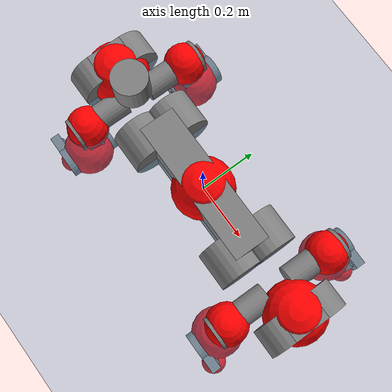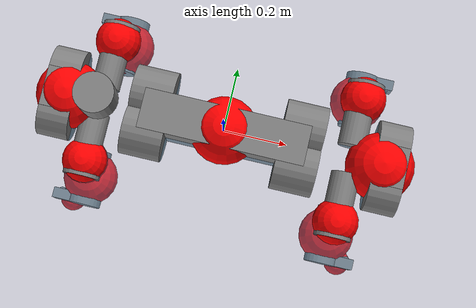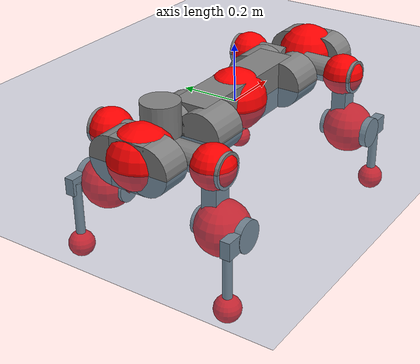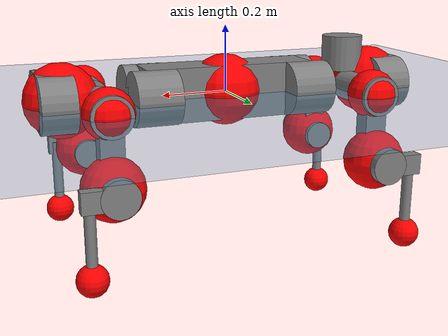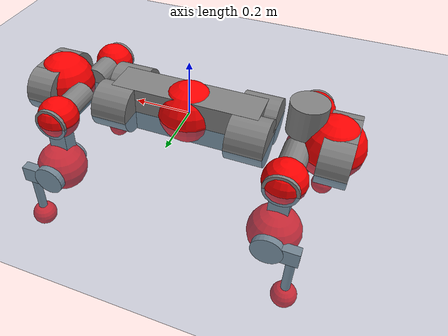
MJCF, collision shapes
<mujoco model="anymal_c">
  <compiler angle="radian" assetdir="assets" balanceinertia="true" inertiafromgeom="false"/>

  <option timestep="0.005" density="1.2" viscosity="2e-05"/>

  <size nkey="1"/>

  <visual>
    <quality shadowsize="8192"/>
    <map shadowclip="0.5"/>
  </visual>

  <default>
    <default class="/">
      <material specular="0" shininess="0.25"/>
      <geom contype="0" conaffinity="0" group="1" solref="-1000 -80"/>
      <site size="0.01 0.005 0.005" group="5"/>
      <general forcelimited="true" forcerange="-80 80" biastype="affine" gainprm="80" biasprm="0 -80 -2"/>
      <default class="anymal_c">
        <joint armature="0.01" damping="0.01" frictionloss="0.1"/>
        <default class="visual">
          <geom type="mesh" group="2"/>
          <default class="visual_zflip"/>
        </default>
        <default class="collision">
          <geom type="cylinder" group="3"/>
          <default class="foot">
            <geom size="0.03 0 0" type="sphere" condim="6" priority="1" friction="0.8 0.02 0.01" solimp="0.015 1 0.03"/>
          </default>
        </default>
      </default>
      <default class="reward_collision_sphere">
        <geom group="5" rgba="1 0 0 1"/>
      </default>
    </default>
  </default>

  <asset>
    <texture type="skybox" colorspace="auto" name="//unnamed_texture_0" builtin="gradient" rgb1="0.95 0.95 0.95" rgb2="0.95 0.95 0.95" width="100" height="600"/>
    <texture type="2d" colorspace="auto" name="texplane" builtin="checker" rgb1="0.345 0.575 0.748" rgb2="0.345 0.575 0.748" markrgb="1 1 1" width="512" height="512"/>
    <texture type="2d" colorspace="linear" name="base" file="base.png"/>
    <texture type="2d" colorspace="linear" name="top_shell" file="top_shell.png"/>
    <texture type="2d" colorspace="linear" name="bottom_shell" file="bottom_shell.png"/>
    <texture type="2d" colorspace="linear" name="remote" file="remote.png"/>
    <texture type="2d" colorspace="linear" name="hatch" file="hatch.png"/>
    <texture type="2d" colorspace="linear" name="handle" file="handle.png"/>
    <texture type="2d" colorspace="linear" name="face" file="face.png"/>
    <texture type="2d" colorspace="linear" name="battery" file="battery.png"/>
    <texture type="2d" colorspace="linear" name="lidar_cage" file="lidar_cage.png"/>
    <texture type="2d" colorspace="linear" name="depth_camera" file="depth_camera.png"/>
    <texture type="2d" colorspace="linear" name="wide_angle_camera" file="wide_angle_camera.png"/>
    <texture type="2d" colorspace="linear" name="lidar" file="lidar.png"/>
    <texture type="2d" colorspace="linear" name="drive" file="drive.png"/>
    <texture type="2d" colorspace="linear" name="hip_l" file="hip_l.png"/>
    <texture type="2d" colorspace="linear" name="shank_l" file="shank_l.png"/>
    <texture type="2d" colorspace="linear" name="foot" file="foot.png"/>
    <texture type="2d" colorspace="linear" name="thigh" file="thigh.png"/>
    <texture type="2d" colorspace="linear" name="shank_r" file="shank_r.png"/>
    <texture type="2d" colorspace="linear" name="hip_r" file="hip_r.png"/>
    <material name="MatPlane" class="/" texture="texplane" texuniform="true" texrepeat="2 2" specular="0.9" shininess="0.5"/>
    <material name="black_plastic" class="/" rgba="0.007 0.007 0.007 1"/>
    <material name="green" class="/" rgba="0.052 0.178 0.033 1"/>
    <material name="red" class="/" rgba="0.178 0.006 0.005 1"/>
    <material name="yellow" class="/" rgba="0.178 0.119 0.006 1"/>
    <material name="lwl" class="/" rgba="0.8 0.8 0.8 1"/>
    <material name="base" class="/" texture="base"/>
    <material name="top_shell" class="/" texture="top_shell"/>
    <material name="bottom_shell" class="/" texture="bottom_shell"/>
    <material name="hip_l" class="/" texture="hip_l"/>
    <material name="thigh" class="/" texture="thigh"/>
    <material name="shank_l" class="/" texture="shank_l"/>
    <material name="foot" class="/" texture="foot"/>
    <material name="hip_r" class="/" texture="hip_r"/>
    <material name="shank" class="/" texture="shank_r"/>
    <material name="hatch" class="/" texture="hatch"/>
    <material name="remote" class="/" texture="remote"/>
    <material name="handle" class="/" texture="handle"/>
    <material name="face" class="/" texture="face"/>
    <material name="depth_camera" class="/" texture="depth_camera"/>
    <material name="wide_angle_camera" class="/" texture="wide_angle_camera"/>
    <material name="battery" class="/" texture="battery"/>
    <material name="lidar_cage" class="/" texture="lidar_cage"/>
    <material name="lidar" class="/" texture="lidar"/>
    <material name="drive" class="/" texture="drive"/>
    <mesh name="base_0" class="/" file="base_0.obj"/>
    <mesh name="base_1" class="/" file="base_1.obj"/>
    <mesh name="base_2" class="/" file="base_2.obj"/>
    <mesh name="base_3" class="/" file="base_3.obj"/>
    <mesh name="base_4" class="/" file="base_4.obj"/>
    <mesh name="base_5" class="/" file="base_5.obj"/>
    <mesh name="top_shell" class="/" file="top_shell.obj"/>
    <mesh name="bottom_shell" class="/" file="bottom_shell.obj"/>
    <mesh name="remote" class="/" file="remote.obj"/>
    <mesh name="handle" class="/" file="handle.obj"/>
    <mesh name="face" class="/" file="face.obj"/>
    <mesh name="wide_angle_camera" class="/" file="wide_angle_camera.obj"/>
    <mesh name="depth_camera" class="/" file="depth_camera.obj"/>
    <mesh name="battery" class="/" file="battery.obj"/>
    <mesh name="lidar_cage" class="/" file="lidar_cage.obj"/>
    <mesh name="lidar" class="/" file="lidar.obj"/>
    <mesh name="drive" class="/" file="drive.obj"/>
    <mesh name="hip_l" class="/" file="hip_l.obj"/>
    <mesh name="thigh" class="/" file="thigh.obj"/>
    <mesh name="shank_l" class="/" file="shank_l.obj"/>
    <mesh name="foot" class="/" file="foot.obj"/>
    <mesh name="hip_r" class="/" file="hip_r.obj"/>
    <mesh name="hatch" class="/" file="hatch.obj"/>
    <mesh name="shank_r" class="/" file="shank_r.obj"/>
  </asset>

  <worldbody>
    <geom name="floor" class="/" size="100 100 0.125" type="plane" group="0" material="MatPlane"/>
    <light name="toplight_shadow" class="/" pos="0 0 5" dir="0.0990148 0.0990148 -0.990148" type="directional" ambient="0.04 0.04 0.04" diffuse="0.55 0.55 0.55" specular="0.12 0.12 0.12"/>
    <light name="toplight_fill" class="/" pos="0 0 5" dir="0.0990148 0.0990148 -0.990148" type="directional" castshadow="false" ambient="0.04 0.04 0.04" diffuse="0.3 0.3 0.3" specular="0.08 0.08 0.08"/>
    <body name="trunk" childclass="anymal_c" pos="0.00226285 -0.000153597 0.00712633" quat="0.999995 0.00176412 -0.000694948 -0.00242031">
      <inertial pos="0.00414332 -0.00449094 0.0294807" quat="0.495182 0.481966 0.499883 0.522131" mass="12.9696" diaginertia="0.891374 0.31204 0.033091"/>
      <joint name="//unnamed_joint_0" type="free" armature="0" damping="0" frictionloss="0"/>
      <geom name="//unnamed_geom_1" class="visual" material="green" mesh="base_0"/>
      <geom name="//unnamed_geom_2" class="visual" material="yellow" mesh="base_1"/>
      <geom name="//unnamed_geom_3" class="visual" material="red" mesh="base_2"/>
      <geom name="//unnamed_geom_4" class="visual" material="black_plastic" mesh="base_3"/>
      <geom name="//unnamed_geom_5" class="visual" material="lwl" mesh="base_4"/>
      <geom name="//unnamed_geom_6" class="visual" material="base" mesh="base_5"/>
      <geom name="trunk_1" class="collision" size="0.259896 0.0627335 0.0806574" type="box"/>
      <geom name="trunk_2" class="collision" size="0.0806574 0.064974" pos="0.238701 0.0625294 0" quat="0.707107 0 0.707107 0"/>
      <geom name="trunk_3" class="collision" size="0.0806574 0.064974" pos="-0.238701 0.0625294 0" quat="0.707107 0 0.707107 0"/>
      <geom name="trunk_4" class="collision" size="0.0806574 0.064974" pos="0.238701 -0.0625294 0" quat="0.707107 0 0.707107 0"/>
      <geom name="trunk_5" class="collision" size="0.0806574 0.064974" pos="-0.238701 -0.0625294 0" quat="0.707107 0 0.707107 0"/>
      <geom name="//unnamed_geom_12" class="visual" material="top_shell" mesh="top_shell"/>
      <geom name="//unnamed_geom_13" class="visual" material="bottom_shell" mesh="bottom_shell"/>
      <geom name="//unnamed_geom_14" class="visual" material="remote" mesh="remote"/>
      <geom name="//unnamed_geom_15" class="visual" material="handle" mesh="handle"/>
      <geom name="//unnamed_geom_16" class="visual" pos="0.454904 0 0" quat="1 0 0 0" material="face" mesh="face"/>
      <geom name="trunk_6" class="collision" size="0.0492906 0.0627335 0.0806574" pos="0.515266 0 0" type="box"/>
      <geom name="//unnamed_geom_18" class="collision" size="0.0806574 0.0492906" pos="0.515266 0.0625294 0" quat="0.707107 0 0.707107 0"/>
      <geom name="//unnamed_geom_19" class="collision" size="0.0806574 0.0492906" pos="0.515266 -0.0625294 0" quat="0.707107 0 0.707107 0"/>
      <geom name="//unnamed_geom_20" class="visual" pos="0.506634 0 -0.0173392" quat="0.965926 0 0.258819 0" material="depth_camera" mesh="depth_camera"/>
      <geom name="//unnamed_geom_21" class="visual" pos="0.563006 0 0.0104465" material="wide_angle_camera" mesh="wide_angle_camera"/>
      <geom name="//unnamed_geom_22" class="visual_zflip" pos="-0.454904 0 0" quat="0 0 0 1" material="face" mesh="face"/>
      <geom name="trunk_7" class="collision" size="0.0492906 0.0627335 0.0806574" pos="-0.515266 0 0" quat="0 0 0 1" type="box"/>
      <geom name="//unnamed_geom_24" class="collision" size="0.0806574 0.0492906" pos="-0.515266 -0.0625294 0" quat="0 -0.707107 0 0.707107"/>
      <geom name="//unnamed_geom_25" class="collision" size="0.0806574 0.0492906" pos="-0.515266 0.0625294 0" quat="0 -0.707107 0 0.707107"/>
      <geom name="//unnamed_geom_26" class="visual" pos="-0.506634 0 -0.0173392" quat="0 -0.258819 0 0.965926" material="depth_camera" mesh="depth_camera"/>
      <geom name="//unnamed_geom_27" class="visual_zflip" pos="-0.563006 0 0.0104465" quat="0 0 0 1" material="wide_angle_camera" mesh="wide_angle_camera"/>
      <geom name="//unnamed_geom_28" class="visual" material="battery" mesh="battery"/>
      <geom name="//unnamed_geom_29" class="visual" pos="0 0.0656038 0.0233092" quat="0.683013 -0.183013 0.183013 0.683013" material="depth_camera" mesh="depth_camera"/>
      <geom name="//unnamed_geom_30" class="visual" pos="0 -0.0656038 0.0233092" quat="0.683013 0.183013 0.183013 -0.683013" material="depth_camera" mesh="depth_camera"/>
      <geom name="//unnamed_geom_31" class="visual" pos="-0.399482 0 0.0512902" quat="1 0 0 0" material="lidar_cage" mesh="lidar_cage"/>
      <geom name="trunk_8" class="collision" size="0.0627335 0.0537716" pos="-0.399482 0 0.0931598"/>
      <geom name="//unnamed_geom_33" class="visual" pos="-0.399482 -8.0225e-05 0.0992308" quat="0.707107 0 0 -0.707107" material="lidar" mesh="lidar"/>
      <geom name="//unnamed_geom_34" class="visual" pos="0.329133 0.0928313 3.37155e-09" quat="0.258819 0.965926 0 0" material="drive" mesh="drive"/>
      <geom name="//unnamed_geom_35" class="visual" pos="0.329133 -0.0928313 -3.37155e-09" quat="0.258819 -0.965926 0 0" material="drive" mesh="drive"/>
      <geom name="//unnamed_geom_36" class="visual" pos="-0.329133 0.0928313 -3.37155e-09" quat="0 0 0.965926 -0.258819" material="drive" mesh="drive"/>
      <geom name="//unnamed_geom_37" class="visual" pos="-0.329133 -0.0928313 3.37155e-09" quat="0 0 -0.965926 -0.258819" material="drive" mesh="drive"/>
      <geom name="//unnamed_geom_38" class="visual" pos="0.127307 0 0.0509413" quat="1 0 0 0" material="hatch" mesh="hatch"/>
      <geom name="//unnamed_geom_39" class="reward_collision_sphere" size="0.107543"/>
      <geom name="//unnamed_geom_40" class="reward_collision_sphere" size="0.107543" pos="0.493865 0 0"/>
      <geom name="//unnamed_geom_41" class="reward_collision_sphere" size="0.107543" pos="-0.493865 0 0"/>
      <site name="imu" pos="0.283434 -0.000546157 0.0516568" size="0.00896193"/>
      <camera name="track" pos="0 -1.78655 0" quat="0.707107 0.707107 0 0" mode="trackcom"/>
      <camera name="ego_camera" pos="0.493865 0 -0.027913" quat="-0.5 -0.5 0.5 0.5"/>
      <body name="LF_HIP" pos="0.330753 0.094313 -0.00114722" quat="0.25888 0.965909 -0.000130292 -0.000472829">
        <inertial pos="0.0678274 -0.0132087 0.000986005" quat="-0.123615 0.733147 -0.124318 0.657084" mass="2.05375" diaginertia="0.0091026 0.00280024 0.000552779"/>
        <joint name="LF_HAA" pos="0 0 0" axis="0.999678 0.0193437 -0.0164042" stiffness="0.0132926" range="-0.728731 0.468016" armature="0.00906888" damping="0.0235795" frictionloss="0.0849921"/>
        <geom name="//unnamed_geom_42" class="visual" pos="0 0.000198333 -3.2576e-05" quat="0.258819 -0.965926 0 0" material="hip_l" mesh="hip_l"/>
        <geom name="//unnamed_geom_43" class="visual" pos="0.0657389 -0.0768986 -0.0429518" quat="0.183013 -0.683013 0.683013 0.183013" material="drive" mesh="drive"/>
        <geom name="//unnamed_geom_44" class="collision" size="0.0448097 0.0627335" pos="0.0657389 -0.0106834 -0.00481849" quat="-0.353553 -0.612372 0.612372 -0.353553"/>
        <body name="LF_THIGH" pos="0.069993 -0.0666084 -0.0346328" quat="0.182953 -0.683351 0.682719 0.182902">
          <inertial pos="0.033869 0.000583673 -0.17309" quat="0.993289 -0.00184953 -0.0829849 0.0805438" mass="2.40435" diaginertia="0.0525045 0.0180905 0.000775416"/>
          <joint name="LF_HFE" pos="0 0 0" axis="0.99999 0.00205214 0.0040485" stiffness="0.00450341" range="-3.11601 3.13395" armature="0.0102411" damping="0" frictionloss="0.0901553"/>
          <geom name="//unnamed_geom_45" class="visual" pos="0.00406279 6.40201e-06 0" quat="0.707107 0 0 -0.707107" material="thigh" mesh="thigh"/>
          <geom name="//unnamed_geom_46" class="collision" size="0.0582526 0.0358477" pos="0.0438991 0 0" quat="0.5 0.5 -0.5 -0.5"/>
          <geom name="//unnamed_geom_47" class="collision" size="0.0336073 0.0268858 0.126645" pos="0.0329243 0 -0.0986126" quat="0.707107 0 0 -0.707107" type="box"/>
          <geom name="//unnamed_geom_48" class="visual" pos="0.110077 0 -0.19888" quat="1 0 0 0" material="drive" mesh="drive"/>
          <geom name="//unnamed_geom_49" class="collision" size="0.0448097 0.0627335" pos="0.0332536 0 -0.19888" quat="0.707107 0 0.707107 0"/>
          <geom name="//unnamed_geom_50" class="reward_collision_sphere" size="0.0716955" pos="0.0274369 0 0"/>
          <body name="LF_SHANK" pos="0.112278 -0.00221286 -0.197473" quat="1 1.06514e-06 9.0382e-06 -1.81031e-05">
            <inertial pos="0.0142474 -0.0482401 -0.056946" quat="0.993377 -0.111659 -0.00826318 -0.0258036" mass="0.416899" diaginertia="0.0170621 0.00530134 0.000182032"/>
            <joint name="LF_KFE" pos="0 0 0" axis="0.999969 -0.000429542 0.00790234" range="-2.98006 3.10806" armature="0.00846541" damping="0.00158074" frictionloss="0.0559725"/>
            <geom name="//unnamed_geom_51" class="visual" pos="0.00132479 0.00706383 0" quat="0.707107 0 0 -0.707107" material="shank_l" mesh="shank_l"/>
            <geom name="LF_kfe_act" class="collision" size="0.0537716 0.0179239" pos="0.0219495 0 0" quat="0.5 0.5 -0.5 -0.5"/>
            <geom name="//unnamed_geom_53" class="collision" size="0.0515302 0.0302465 0.0170277" pos="0.0219495 -0.0513625 0" quat="0.5 0.5 -0.5 -0.5" type="box"/>
            <geom name="//unnamed_geom_54" class="visual" pos="0.0143218 -0.0762873 -0.235844" quat="0.382683 0 0 -0.92388" material="foot" mesh="foot"/>
            <geom name="LF_calf" class="collision" size="0.0156834 0.126589" pos="0.0143221 -0.0785637 -0.117922" quat="0.707107 0 0 -0.707107"/>
            <geom name="LF_foot" class="foot" size="0.0318995" pos="0.0143221 -0.0785637 -0.220143" quat="0.707107 0 0 -0.707107"/>
            <geom name="//unnamed_geom_57" class="reward_collision_sphere" size="0.0896193" pos="-0.0548739 0 0"/>
            <geom name="//unnamed_geom_58" class="reward_collision_sphere" size="0.0448097" pos="0.0143221 -0.0785637 -0.220143"/>
            <site name="LF_foot" class="foot" pos="0.0143221 -0.0785637 -0.220143" quat="0.707107 0 0 -0.707107" size="0.00896193"/>
          </body>
        </body>
      </body>
      <body name="RF_HIP" pos="0.330623 -0.0950999 0.000894528" quat="0.261318 -0.965249 0.000152024 0.002816">
        <inertial pos="0.0619334 0.0144919 -0.00504975" quat="0.140672 0.704492 0.124642 0.684373" mass="1.79158" diaginertia="0.00943977 0.00272463 0.000551747"/>
        <joint name="RF_HAA" pos="0 0 0" axis="0.999978 0.000614594 -0.00666562" stiffness="0.0201631" range="-0.350311 0.742884" armature="0.00963982" damping="0.0187766" frictionloss="0.0793791"/>
        <geom name="//unnamed_geom_59" class="visual" pos="0 -0.000198331 -3.25759e-05" quat="0.258819 0.965926 0 0" material="hip_r" mesh="hip_r"/>
        <geom name="//unnamed_geom_60" class="visual" pos="0.0657389 0.0768986 -0.0429518" quat="0.183013 0.683013 0.683013 -0.183013" material="drive" mesh="drive"/>
        <geom name="//unnamed_geom_61" class="collision" size="0.0448097 0.0627335" pos="0.0657389 0.0106834 -0.00481849" quat="-0.353553 0.612372 0.612372 0.353553"/>
        <body name="RF_THIGH" pos="0.0670686 0.0664577 -0.0316639" quat="0.183091 0.682832 0.683121 -0.183203">
          <inertial pos="0.0343826 2.31796e-05 -0.172117" quat="0.992694 -0.0109067 -0.0838021 0.0861213" mass="2.12548" diaginertia="0.0494769 0.0180548 0.000697248"/>
          <joint name="RF_HFE" pos="0 0 0" axis="1 0.000896224 -1.87643e-05" range="-3.15366 3.16906" armature="0.00903133" damping="0.0473084" frictionloss="0.107522"/>
          <geom name="//unnamed_geom_62" class="visual" pos="0.00406279 6.40201e-06 0" quat="0.707107 0 0 -0.707107" material="thigh" mesh="thigh"/>
          <geom name="//unnamed_geom_63" class="collision" size="0.0582526 0.0358477" pos="0.0438991 0 0" quat="0.5 0.5 0.5 0.5"/>
          <geom name="//unnamed_geom_64" class="collision" size="0.0336073 0.0268858 0.126645" pos="0.0329243 0 -0.0986126" quat="0.707107 0 0 0.707107" type="box"/>
          <geom name="//unnamed_geom_65" class="visual" pos="0.110077 0 -0.19888" quat="1 0 0 0" material="drive" mesh="drive"/>
          <geom name="//unnamed_geom_66" class="collision" size="0.0448097 0.0627335" pos="0.0332536 0 -0.19888" quat="0.707107 0 0.707107 0"/>
          <geom name="//unnamed_geom_67" class="reward_collision_sphere" size="0.0716955" pos="0.0274369 0 0"/>
          <body name="RF_SHANK" pos="0.116691 0.000626925 -0.197051" quat="1 0.000627914 -0.000692555 0.000278347">
            <inertial pos="0.00460339 0.0605661 -0.0602383" quat="0.992247 0.12251 -0.0190279 -0.00862295" mass="0.442399" diaginertia="0.0169711 0.00527655 0.000204297"/>
            <joint name="RF_KFE" pos="0 0 0" axis="0.999976 -0.00357465 0.00598446" range="-3.126 3.09238" armature="0.00924463" damping="0.021053" frictionloss="0.0925024"/>
            <geom name="//unnamed_geom_68" class="visual" pos="0.00132478 -0.00706382 0" quat="0.707107 0 0 0.707107" material="shank" mesh="shank_r"/>
            <geom name="RF_kfe_act" class="collision" size="0.0537716 0.0179239" pos="0.0219495 0 0" quat="0.5 0.5 0.5 0.5"/>
            <geom name="//unnamed_geom_70" class="collision" size="0.0515302 0.0302465 0.0170277" pos="0.0219495 0.0513625 0" quat="0.5 0.5 0.5 0.5" type="box"/>
            <geom name="//unnamed_geom_71" class="visual" pos="0.0143224 0.0762873 -0.235844" quat="0.382683 0 0 0.92388" material="foot" mesh="foot"/>
            <geom name="RF_calf" class="collision" size="0.0156834 0.126589" pos="0.0143221 0.0785637 -0.117922" quat="0.707107 0 0 0.707107"/>
            <geom name="RF_foot" class="foot" size="0.0325236" pos="0.0143221 0.0785637 -0.220143" quat="0.707107 0 0 0.707107"/>
            <geom name="//unnamed_geom_74" class="reward_collision_sphere" size="0.0896193" pos="-0.0548739 0 0"/>
            <geom name="//unnamed_geom_75" class="reward_collision_sphere" size="0.0448097" pos="0.0143221 0.0785637 -0.220143"/>
            <site name="RF_foot" class="foot" pos="0.0143221 0.0785637 -0.220143" quat="0.707107 0 0 0.707107" size="0.00896193"/>
          </body>
        </body>
      </body>
      <body name="LH_HIP" pos="-0.327854 0.0955841 -0.0026565" quat="-8.75152e-05 0.000552185 0.965772 -0.259391">
        <inertial pos="0.0611345 0.0192773 0.00140101" quat="0.13662 0.67946 0.127069 0.709593" mass="1.98325" diaginertia="0.00957743 0.00286247 0.000581006"/>
        <joint name="LH_HAA" pos="0 0 0" axis="0.999689 -0.0246924 -0.00343123" stiffness="0.00753227" range="-0.387972 0.601773" armature="0.00676308" damping="0.0214556" frictionloss="0.0925019"/>
        <geom name="//unnamed_geom_76" class="visual" pos="0 -0.000198331 -3.25759e-05" quat="-0.258819 -0.965926 0 0" material="hip_r" mesh="hip_r"/>
        <geom name="//unnamed_geom_77" class="visual" pos="0.0657389 0.0768986 -0.0429518" quat="0.183013 0.683013 0.683013 -0.183013" material="drive" mesh="drive"/>
        <geom name="//unnamed_geom_78" class="collision" size="0.0448097 0.0627335" pos="0.0657389 0.0106834 -0.00481849" quat="-0.353553 0.612372 0.612372 0.353553"/>
        <body name="LH_THIGH" pos="0.0641657 0.0694645 -0.0374207" quat="0.182569 0.682489 0.683953 -0.181896">
          <inertial pos="0.0259623 0.00326477 -0.163707" quat="0.992751 -0.00524451 -0.0806295 0.0889784" mass="1.93764" diaginertia="0.039813 0.0156601 0.000598951"/>
          <joint name="LH_HFE" pos="0 0 0" axis="0.999284 0.033167 -0.0182183" range="-3.09581 3.17051" armature="0.00926004" damping="0.0468329" frictionloss="0.0884544"/>
          <geom name="//unnamed_geom_79" class="visual" pos="0.00406279 6.40201e-06 0" quat="0.707107 0 0 -0.707107" material="thigh" mesh="thigh"/>
          <geom name="//unnamed_geom_80" class="collision" size="0.0582526 0.0358477" pos="0.0438991 0 0" quat="0.5 0.5 -0.5 -0.5"/>
          <geom name="//unnamed_geom_81" class="collision" size="0.0336073 0.0268858 0.126645" pos="0.0329243 0 -0.0986126" quat="0.707107 0 0 -0.707107" type="box"/>
          <geom name="//unnamed_geom_82" class="visual" pos="0.110077 0 -0.19888" quat="1 0 0 0" material="drive" mesh="drive"/>
          <geom name="//unnamed_geom_83" class="collision" size="0.0448097 0.0627335" pos="0.0332536 0 -0.19888" quat="0.707107 0 0.707107 0"/>
          <geom name="//unnamed_geom_84" class="reward_collision_sphere" size="0.0716955" pos="0.0274369 0 0"/>
          <body name="LH_SHANK" pos="0.111751 -0.000485759 -0.195014" quat="0.999998 -0.00115719 0.000567693 0.00149364">
            <inertial pos="0.0127903 0.0518601 -0.0488947" quat="0.994699 0.099644 0.0201443 0.0154766" mass="0.449104" diaginertia="0.0166419 0.00551387 0.000192242"/>
            <joint name="LH_KFE" pos="0 0 0" axis="0.999951 0.00979928 0.00141598" range="-3.10322 3.30409" armature="0.00637041" damping="0.043078" frictionloss="0.0922371"/>
            <geom name="//unnamed_geom_85" class="visual" pos="0.00132478 -0.00706382 0" quat="-0.707107 0 0 -0.707107" material="shank" mesh="shank_r"/>
            <geom name="LH_kfe_act" class="collision" size="0.0537716 0.0179239" pos="0.0219495 0 0" quat="0.5 0.5 -0.5 -0.5"/>
            <geom name="//unnamed_geom_87" class="collision" size="0.0515302 0.0302465 0.0170277" pos="0.0219495 0.0513625 0" quat="0.5 0.5 -0.5 -0.5" type="box"/>
            <geom name="//unnamed_geom_88" class="visual" pos="0.0143224 0.0762873 -0.235844" quat="-0.382683 0 0 -0.92388" material="foot" mesh="foot"/>
            <geom name="LH_calf" class="collision" size="0.0156834 0.126589" pos="0.0143221 0.0785637 -0.117922" quat="0.707107 0 0 -0.707107"/>
            <geom name="LH_foot" class="foot" size="0.0265574" pos="0.0143221 0.0785637 -0.220143" quat="0.707107 0 0 -0.707107"/>
            <geom name="//unnamed_geom_91" class="reward_collision_sphere" size="0.0896193" pos="-0.0548739 0 0"/>
            <geom name="//unnamed_geom_92" class="reward_collision_sphere" size="0.0448097" pos="0.0143221 0.0785637 -0.220143"/>
            <site name="LH_foot" class="foot" pos="0.0143221 0.0785637 -0.220143" quat="0.707107 0 0 -0.707107" size="0.00896193"/>
          </body>
        </body>
      </body>
      <body name="RH_HIP" pos="-0.337189 -0.0914897 -0.00577751" quat="-4.6925e-05 -8.42293e-05 -0.965919 -0.258843">
        <inertial pos="0.0664132 -0.0118934 -0.00592451" quat="-0.130664 0.693506 -0.156799 0.690934" mass="2.01283" diaginertia="0.00781021 0.00258014 0.000489403"/>
        <joint name="RH_HAA" pos="0 0 0" axis="0.999166 -0.00183062 0.0407965" stiffness="0.00208925" range="-0.714199 0.501448" armature="0.00909916" damping="0.00997748" frictionloss="0.0539273"/>
        <geom name="//unnamed_geom_93" class="visual" pos="0 0.000198333 -3.2576e-05" quat="-0.258819 0.965926 0 0" material="hip_l" mesh="hip_l"/>
        <geom name="//unnamed_geom_94" class="visual" pos="0.0657389 -0.0768986 -0.0429518" quat="-0.183013 0.683013 -0.683013 -0.183013" material="drive" mesh="drive"/>
        <geom name="//unnamed_geom_95" class="collision" size="0.0448097 0.0627335" pos="0.0657389 -0.0106834 -0.00481849" quat="0.353553 0.612372 -0.612372 0.353553"/>
        <body name="RH_THIGH" pos="0.0636769 -0.0655739 -0.0257482" quat="-0.182537 0.683209 -0.683266 -0.181807">
          <inertial pos="0.0339677 0.00103863 -0.165998" quat="0.991856 -0.0117638 -0.0882855 0.091049" mass="2.38816" diaginertia="0.0445238 0.0166869 0.000697816"/>
          <joint name="RH_HFE" pos="0 0 0" axis="0.999999 -0.000771081 0.00142354" stiffness="0.00502944" range="-3.12678 3.21704" armature="0.00900667" damping="0.00187298" frictionloss="0.0826446"/>
          <geom name="//unnamed_geom_96" class="visual" pos="0.00406279 6.40201e-06 0" quat="0.707107 0 0 -0.707107" material="thigh" mesh="thigh"/>
          <geom name="//unnamed_geom_97" class="collision" size="0.0582526 0.0358477" pos="0.0438991 0 0" quat="0.5 0.5 0.5 0.5"/>
          <geom name="//unnamed_geom_98" class="collision" size="0.0336073 0.0268858 0.126645" pos="0.0329243 0 -0.0986126" quat="0.707107 0 0 0.707107" type="box"/>
          <geom name="//unnamed_geom_99" class="visual" pos="0.110077 0 -0.19888" quat="1 0 0 0" material="drive" mesh="drive"/>
          <geom name="//unnamed_geom_100" class="collision" size="0.0448097 0.0627335" pos="0.0332536 0 -0.19888" quat="0.707107 0 0.707107 0"/>
          <geom name="//unnamed_geom_101" class="reward_collision_sphere" size="0.0716955" pos="0.0274369 0 0"/>
          <body name="RH_SHANK" pos="0.116622 -0.00356104 -0.195443" quat="0.999992 -0.000686248 -0.00347398 -0.00208986">
            <inertial pos="0.00712302 -0.0541191 -0.0574015" quat="0.989215 -0.144714 0.00213856 -0.02253" mass="0.403104" diaginertia="0.0153733 0.00506746 0.000194976"/>
            <joint name="RH_KFE" pos="0 0 0" axis="0.999267 -0.00915107 0.037182" stiffness="0.0295943" range="-3.23953 3.10733" armature="0.00902793" damping="0.0334253" frictionloss="0.0830134"/>
            <geom name="//unnamed_geom_102" class="visual" pos="0.00132479 0.00706383 0" quat="0.707107 0 0 -0.707107" material="shank_l" mesh="shank_l"/>
            <geom name="RH_kfe_act" class="collision" size="0.0537716 0.0179239" pos="0.0219495 0 0" quat="0.5 0.5 0.5 0.5"/>
            <geom name="//unnamed_geom_104" class="collision" size="0.0515302 0.0302465 0.0170277" pos="0.0219495 -0.0513625 0" quat="0.5 0.5 0.5 0.5" type="box"/>
            <geom name="//unnamed_geom_105" class="visual" pos="0.0143218 -0.0762873 -0.235844" quat="0.382683 0 0 -0.92388" material="foot" mesh="foot"/>
            <geom name="RH_calf" class="collision" size="0.0156834 0.126589" pos="0.0143221 -0.0785637 -0.117922" quat="0.707107 0 0 0.707107"/>
            <geom name="RH_foot" class="foot" size="0.024139" pos="0.0143221 -0.0785637 -0.220143" quat="0.707107 0 0 0.707107"/>
            <geom name="//unnamed_geom_108" class="reward_collision_sphere" size="0.0896193" pos="-0.0548739 0 0"/>
            <geom name="//unnamed_geom_109" class="reward_collision_sphere" size="0.0448097" pos="0.0143221 -0.0785637 -0.220143"/>
            <site name="RH_foot" class="foot" pos="0.0143221 -0.0785637 -0.220143" quat="0.707107 0 0 0.707107" size="0.00896193"/>
          </body>
        </body>
      </body>
    </body>
  </worldbody>

  <contact>
    <pair class="/" geom1="floor" geom2="LF_foot" name="//unnamed_contact_0"/>
    <pair class="/" geom1="floor" geom2="RF_foot" name="//unnamed_contact_1"/>
    <pair class="/" geom1="floor" geom2="LH_foot" name="//unnamed_contact_2"/>
    <pair class="/" geom1="floor" geom2="RH_foot" name="//unnamed_contact_3"/>
  </contact>

  <actuator>
    <general name="LF_HAA" class="/" joint="LF_HAA" forcerange="-72.3067 72.3067" gainprm="74.2489" biasprm="0 -74.2489 -2.1365"/>
    <general name="LF_HFE" class="/" joint="LF_HFE" forcerange="-78.1096 78.1096" gainprm="74.2489" biasprm="0 -74.2489 -2.1365"/>
    <general name="LF_KFE" class="/" joint="LF_KFE" forcerange="-67.9003 67.9003" gainprm="74.2489" biasprm="0 -74.2489 -2.1365"/>
    <general name="RF_HAA" class="/" joint="RF_HAA" forcerange="-66.3162 66.3162" gainprm="74.2489" biasprm="0 -74.2489 -2.1365"/>
    <general name="RF_HFE" class="/" joint="RF_HFE" forcerange="-69.1486 69.1486" gainprm="74.2489" biasprm="0 -74.2489 -2.1365"/>
    <general name="RF_KFE" class="/" joint="RF_KFE" forcerange="-71.4537 71.4537" gainprm="74.2489" biasprm="0 -74.2489 -2.1365"/>
    <general name="LH_HAA" class="/" joint="LH_HAA" forcerange="-71.4056 71.4056" gainprm="74.2489" biasprm="0 -74.2489 -2.1365"/>
    <general name="LH_HFE" class="/" joint="LH_HFE" forcerange="-90.5529 90.5529" gainprm="74.2489" biasprm="0 -74.2489 -2.1365"/>
    <general name="LH_KFE" class="/" joint="LH_KFE" forcerange="-56.5665 56.5665" gainprm="74.2489" biasprm="0 -74.2489 -2.1365"/>
    <general name="RH_HAA" class="/" joint="RH_HAA" forcerange="-72.0231 72.0231" gainprm="74.2489" biasprm="0 -74.2489 -2.1365"/>
    <general name="RH_HFE" class="/" joint="RH_HFE" forcerange="-70.1074 70.1074" gainprm="74.2489" biasprm="0 -74.2489 -2.1365"/>
    <general name="RH_KFE" class="/" joint="RH_KFE" forcerange="-66.9723 66.9723" gainprm="74.2489" biasprm="0 -74.2489 -2.1365"/>
  </actuator>

  <sensor>
    <gyro site="imu" name="imu_angular_velocity"/>
    <velocimeter site="imu" name="imu_linear_velocity"/>
    <framelinvel objtype="site" objname="LF_foot" name="LF_foot_global_linear_velocity"/>
    <framelinvel objtype="site" objname="RF_foot" name="RF_foot_global_linear_velocity"/>
    <framelinvel objtype="site" objname="LH_foot" name="LH_foot_global_linear_velocity"/>
    <framelinvel objtype="site" objname="RH_foot" name="RH_foot_global_linear_velocity"/>
  </sensor>

  <keyframe>
    <key name="home" qpos="0 0 0.55 1 0 0 0 0 0.4 -0.8 0 -0.4 0.8 0 -0.4 0.8 0 0.4 -0.8"/>
  </keyframe>
</mujoco>
